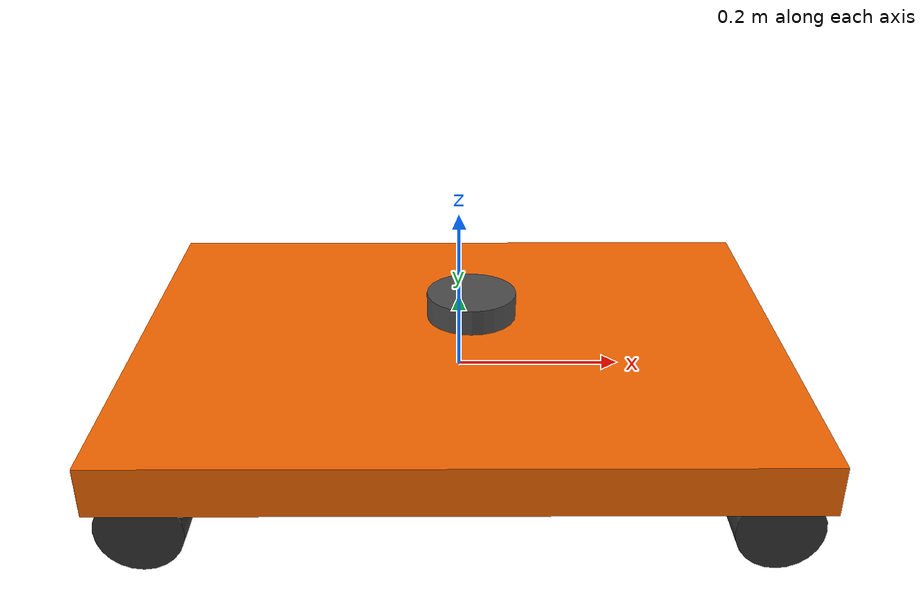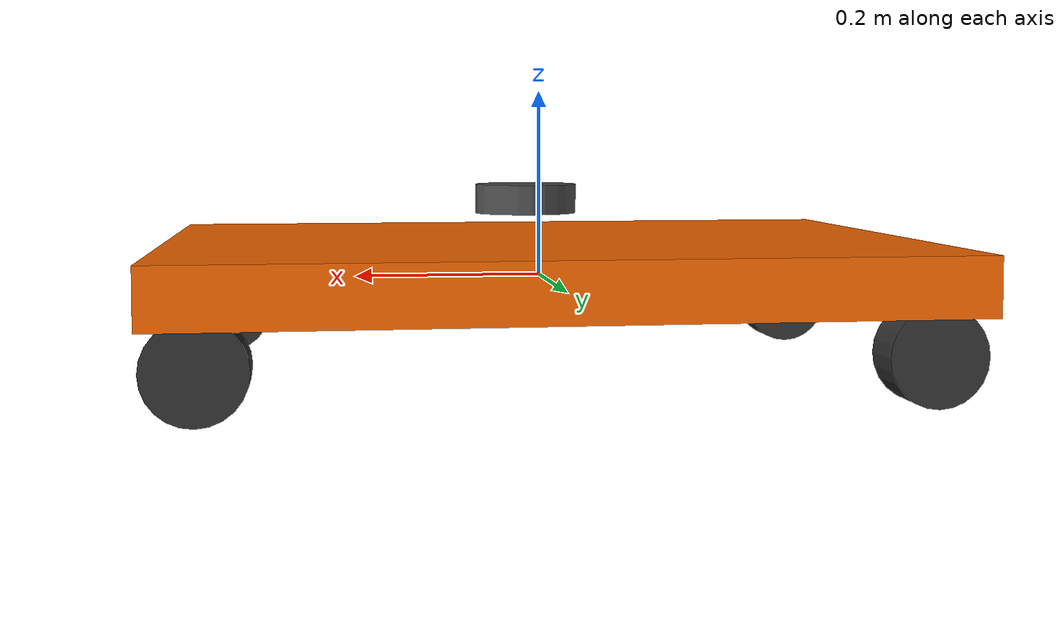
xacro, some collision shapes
<?xml version="1.0"?>
<robot name="four_macnum" xmlns:xacro="http://ros.org/wiki/xacro">
  <xacro:include filename="$(find four_macnum_description)/urdf/four_macnum.gazebo.xacro"/>

  <link name="base_footprint"/>

  <joint name="base_joint" type="fixed">
    <origin xyz="0 0 0.01" rpy="0 0 0"/>
    <parent link="base_footprint"/>
    <child link="base_link"/>
  </joint>

  <link name="base_link">
    <inertial>
      <origin xyz="0 0 0" rpy="0 0 0"/>
      <mass value="6.0"/>
      <inertia ixx="2.18e-02" ixy="0.0" ixz="0.0" iyy="4.68e-02" iyz="0.0" izz="6.5e-02" />
    </inertial>
    <visual>
      <origin xyz="0 0 0" rpy="0 0 0"/>
      <geometry>
        <box size="0.8 0.6 0.06"/>
      </geometry>
      <material name="orange">
      <color rgba="0.98 0.41 0 1"/>
     </material>
    </visual>
    <collision>
      <origin xyz="0 0 0" rpy="0 0 0"/>
      <geometry>
        <box size="0.81 0.6 0.06"/>
      </geometry>
    </collision>
  </link>

  <link name="lidar_link">
     <visual>
      <origin xyz="0 0 0.0" rpy="0 0 0"/>
      <geometry>
        <mesh filename="package://four_macnum_description/meshes/lds.stl" scale="0.001 0.001 0.001"/>
      </geometry>
      <material name="dark"/>
    </visual>

    <collision>
      <origin xyz="0.015 0 -0.0065" rpy="0 0 0"/>
      <geometry>
        <cylinder length="0.0315" radius="0.055"/>
      </geometry>
    </collision>

    <inertial>
      <mass value="0.114" />
      <origin xyz="0 0 0" />
      <inertia ixx="0.001" ixy="0.0" ixz="0.0"
               iyy="0.001" iyz="0.0"
               izz="0.001" />
    </inertial>
  </link>

  <joint name="lidar_joint" type="fixed">
    <origin xyz="0 0 0.08" rpy="0 0 0"/>
    <parent link="base_link"/>
    <child link="lidar_link"/>
  </joint>

  <link name='imu_link'/>
  <joint name='imu_joint' type='fixed'>
    <parent link='base_link'/>
    <child link='imu_link'/>
  </joint>

  <link name="wheel1_link">
    <inertial>
      <origin xyz="0 0 0" rpy="0 0 0"/>
      <mass value="0.00001"/>
      <inertia ixx="10" ixy="0.0" ixz="0.0" iyy="10" iyz="0.0" izz="10"/>
    </inertial>
    <visual>
      <origin xyz="0 0 0" rpy="0 0 0"/>
      <geometry>
        <cylinder length="0.05" radius="0.05"/>
      </geometry>
      <material name="">
        <color rgba="0.2 0.2 0.2 1"/>
      </material>
    </visual>
    <collision>
      <origin xyz="0 0 0" rpy="0 0 0"/>
      <geometry>
        <cylinder length="0.05" radius="0.05"/>
      </geometry>
    </collision>
  </link>

  <joint name="wheel1_joint" type="fixed">
    <origin xyz="0.35 0.25 -0.07" rpy="1.5707 0 0"/>
    <parent link="base_link"/>
    <child link="wheel1_link"/>
  </joint>

  <link name="wheel2_link">
    <inertial>
      <origin xyz="0 0 0" rpy="0 0 0"/>
      <mass value="0.00001"/>
      <inertia ixx="10" ixy="0.0" ixz="0.0" iyy="10" iyz="0.0" izz="10"/>
    </inertial>
    <visual>
      <origin xyz="0 0 0" rpy="0 0 0"/>
      <geometry>
        <cylinder length="0.05" radius="0.05"/>
      </geometry>
      <material name="">
        <color rgba="0.2 0.2 0.2 1"/>
      </material>
    </visual>
    <collision>
      <origin xyz="0 0 0" rpy="0 0 0"/>
      <geometry>
        <cylinder length="0.05" radius="0.05"/>
      </geometry>
    </collision>
  </link>

  <joint name="wheel2_joint" type="fixed">
    <origin xyz="-0.35 0.25 -0.07" rpy="1.5707 0 0"/>
    <parent link="base_link"/>
    <child link="wheel2_link"/>
  </joint>

  <link name="wheel3_link">
    <inertial>
      <origin xyz="0 0 0" rpy="0 0 0"/>
      <mass value="0.00001"/>
      <inertia ixx="10" ixy="0.0" ixz="0.0" iyy="10" iyz="0.0" izz="10"/>
    </inertial>
    <visual>
      <origin xyz="0 0 0" rpy="0 0 0"/>
      <geometry>
        <cylinder length="0.05" radius="0.05"/>
      </geometry>
      <material name="">
        <color rgba="0.2 0.2 0.2 1"/>
      </material>
    </visual>
    <collision>
      <origin xyz="0 0 0" rpy="0 0 0"/>
      <geometry>
        <cylinder length="0.05" radius="0.05"/>
      </geometry>
    </collision>
  </link>

  <joint name="wheel3_joint" type="fixed">
    <origin xyz="0.35 -0.25 -0.07" rpy="1.5707 0 0"/>
    <parent link="base_link"/>
    <child link="wheel3_link"/>
  </joint>

  <link name="wheel4_link">
    <inertial>
      <origin xyz="0 0 0" rpy="0 0 0"/>
      <mass value="0.00001"/>
      <inertia ixx="10" ixy="0.0" ixz="0.0" iyy="10" iyz="0.0" izz="10"/>
    </inertial>
    <visual>
      <origin xyz="0 0 0" rpy="0 0 0"/>
      <geometry>
        <cylinder length="0.05" radius="0.05"/>
      </geometry>
      <material name="">
        <color rgba="0.2 0.2 0.2 1"/>
      </material>
    </visual>
    <collision>
      <origin xyz="0 0 0" rpy="0 0 0"/>
      <geometry>
        <cylinder length="0.05" radius="0.05"/>
      </geometry>
    </collision>
  </link>

  <joint name="wheel4_joint" type="fixed">
    <origin xyz="-0.35 -0.25 -0.07" rpy="1.5707 0 0"/>
    <parent link="base_link"/>
    <child link="wheel4_link"/>
  </joint>
</robot>
